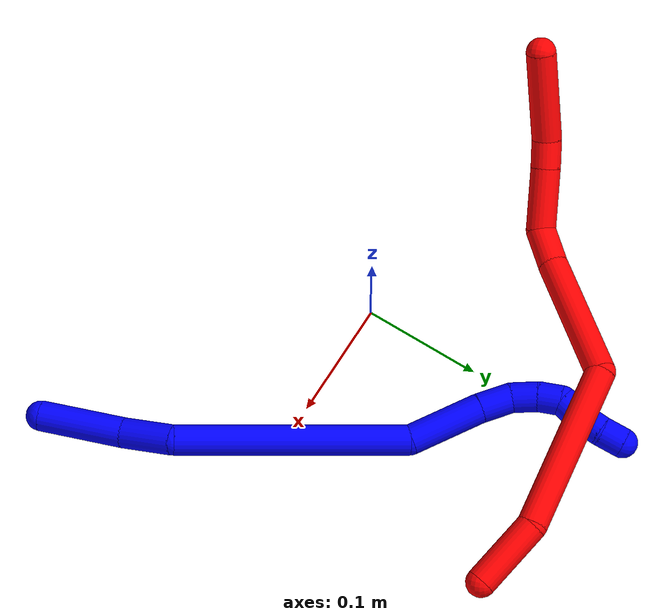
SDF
<sdf version="1.7">
 <world name="default">
  <plugin name="TubeGeneratorPlugin" filename="libtube_generator_plugin.so"/>
  <model name="photoneo_s_sensor">
   <static>1</static>
   <pose>0 0 2 1.57079 1.57079 3.14159</pose>
   <link name="link">
    <inertial><mass>0.1</mass></inertial>
    <sensor name="sensor" type="depth">
     <update_rate>30</update_rate>
     <camera>
      <horizontal_fov>1.22</horizontal_fov>
      <image><width>1920</width><height>1200</height><format>B8G8R8</format></image>
      <clip><near>0.1</near><far>4</far></clip>
      <depth_camera><output>points</output></depth_camera>
     </camera>
     <plugin name="camera_plugin" filename="libgazebo_ros_depth_camera.so">
      <baseline>0.2</baseline>
      <alwaysOn>1</alwaysOn>
      <updateRate>0.0</updateRate>
      <cameraName>camera_ir</cameraName>
      <imageTopicName>/camera/color/image_raw</imageTopicName>
      <cameraInfoTopicName>/camera/color/camera_info</cameraInfoTopicName>
      <depthImageTopicName>/camera/depth/image_raw</depthImageTopicName>
      <depthImageCameraInfoTopicName>/camera/depth/camera_info</depthImageCameraInfoTopicName>
      <pointCloudTopicName>/camera/depth/points</pointCloudTopicName>
      <frameName>fr_optical</frameName>
      <pointCloudCutoff>0.1</pointCloudCutoff>
      <pointCloudCutoffMax>2.0</pointCloudCutoffMax>
      <distortionK1>0</distortionK1>
      <distortionK2>0</distortionK2>
      <distortionK3>0</distortionK3>
      <distortionT1>0</distortionT1>
      <distortionT2>0</distortionT2>
      <CxPrime>0</CxPrime>
      <Cx>0</Cx>
      <Cy>0</Cy>
      <focalLength>0</focalLength>
      <hackBaseline>0</hackBaseline>
     </plugin>
    </sensor>
   </link>
  </model>
  <gravity>0 0 -9.8</gravity>
  <magnetic_field>6e-06 2.3e-05 -4.2e-05</magnetic_field>
  <atmosphere type="adiabatic"/>
  <physics name="default_physics" default="0" type="ode">
   <max_step_size>0.003</max_step_size>
   <real_time_factor>1</real_time_factor>
   <real_time_update_rate>1000</real_time_update_rate>
   <max_contacts>10000</max_contacts>
   <ode>
    <solver>
     <type>quick</type>
     <iters>100</iters>
     <sor>1.3</sor>
     <use_dynamic_moi_rescaling>0</use_dynamic_moi_rescaling>
    </solver>
    <constraints>
     <contact_max_correcting_vel>0</contact_max_correcting_vel>
     <contact_surface_layer>0.001</contact_surface_layer>
     <cfm>0</cfm>
     <erp>0.2</erp>
    </constraints>
   </ode>
  </physics>
  <scene><ambient>0.4 0.4 0.4 1</ambient><background>0.7 0.7 0.7 1</background><shadows>0</shadows></scene>
  <audio><device>default</device></audio>
  <spherical_coordinates>
   <surface_model>EARTH_WGS84</surface_model>
   <latitude_deg>0</latitude_deg>
   <longitude_deg>0</longitude_deg>
   <elevation>0</elevation>
   <heading_deg>0</heading_deg>
  </spherical_coordinates>
  <model name="bin">
   <static>1</static>
   <link name="bottom">
    <collision name="collision-bottom">
     <pose>0 0 -0.01 0 -0 0</pose>
     <geometry><box><size>0.8 0.6 0.02</size></box></geometry>
     <surface>
      <friction><ode><mu>100</mu><mu2>100</mu2></ode></friction>
      <contact><collide_bitmask>65535</collide_bitmask></contact>
     </surface>
    </collision>
   </link>
   <link name="west_wall">
    <collision name="collision-west_wall">
     <pose>-0.41 0 0.1 0 -0 0</pose>
     <geometry><box><size>0.02 0.6 0.2</size></box></geometry>
     <surface>
      <friction><ode><mu>100</mu><mu2>100</mu2></ode></friction>
      <contact><collide_bitmask>65535</collide_bitmask></contact>
     </surface>
    </collision>
   </link>
   <link name="east_wall">
    <collision name="collision-east_wall">
     <pose>0.41 0 0.1 0 -0 0</pose>
     <geometry><box><size>0.02 0.6 0.2</size></box></geometry>
     <surface>
      <friction><ode><mu>100</mu><mu2>100</mu2></ode></friction>
      <contact><collide_bitmask>65535</collide_bitmask></contact>
     </surface>
    </collision>
   </link>
   <link name="south_wall">
    <collision name="collision-south_wall">
     <pose>0 -0.31 0.1 0 -0 0</pose>
     <geometry><box><size>0.8 0.02 0.2</size></box></geometry>
     <surface>
      <friction><ode><mu>100</mu><mu2>100</mu2></ode></friction>
      <contact><collide_bitmask>65535</collide_bitmask></contact>
     </surface>
    </collision>
   </link>
   <link name="north_wall">
    <collision name="collision-north_wall">
     <pose>0 0.31 0.1 0 -0 0</pose>
     <geometry><box><size>0.8 0.02 0.2</size></box></geometry>
     <surface>
      <friction><ode><mu>100</mu><mu2>100</mu2></ode></friction>
      <contact><collide_bitmask>65535</collide_bitmask></contact>
     </surface>
    </collision>
   </link>
  </model>
  <model name="1">
   <static>0</static>
   <link name="1">
    <collision name="collision-cylinder-e_1_1_4">
     <pose>-0.01537 0.027193 -0.0165 -2.11617 -0.450137 0.77256</pose>
     <geometry><cylinder><radius>0.0125</radius><length>0.070653</length></cylinder></geometry>
     <surface>
      <friction><ode><mu>1.16</mu><mu2>1.16</mu2><slip1>0</slip1><slip2>0</slip2></ode></friction>
      <contact><ode><kp>1e+06</kp><kd>1</kd><max_vel>0</max_vel><min_depth>0.001</min_depth></ode></contact>
     </surface>
    </collision>
    <visual name="visual-cylinder-e_1_1_4">
     <pose>-0.01537 0.027193 -0.0165 -2.11617 -0.450137 0.77256</pose>
     <geometry><cylinder><radius>0.0125</radius><length>0.070653</length></cylinder></geometry>
     <material><ambient>0 0 1 1</ambient></material>
    </visual>
    <collision name="collision-cylinder-e_2_4_5">
     <pose>-0.042752 0.07113 -0.04054 -1.99392 -0.579273 0.863999</pose>
     <geometry><cylinder><radius>0.0125</radius><length>0.043886</length></cylinder></geometry>
     <surface>
      <friction><ode><mu>1.16</mu><mu2>1.16</mu2><slip1>0</slip1><slip2>0</slip2></ode></friction>
      <contact><ode><kp>1e+06</kp><kd>1</kd><max_vel>0</max_vel><min_depth>0.001</min_depth></ode></contact>
     </surface>
    </collision>
    <visual name="visual-cylinder-e_2_4_5">
     <pose>-0.042752 0.07113 -0.04054 -1.99392 -0.579273 0.863999</pose>
     <geometry><cylinder><radius>0.0125</radius><length>0.043886</length></cylinder></geometry>
     <material><ambient>0 0 1 1</ambient></material>
    </visual>
    <collision name="collision-cylinder-e_3_5_6">
     <pose>-0.0962 0.140691 -0.116771 -2.4861 -0.446062 1.17654</pose>
     <geometry><cylinder><radius>0.0125</radius><length>0.192094</length></cylinder></geometry>
     <surface>
      <friction><ode><mu>1.16</mu><mu2>1.16</mu2><slip1>0</slip1><slip2>0</slip2></ode></friction>
      <contact><ode><kp>1e+06</kp><kd>1</kd><max_vel>0</max_vel><min_depth>0.001</min_depth></ode></contact>
     </surface>
    </collision>
    <visual name="visual-cylinder-e_3_5_6">
     <pose>-0.0962 0.140691 -0.116771 -2.4861 -0.446062 1.17654</pose>
     <geometry><cylinder><radius>0.0125</radius><length>0.192094</length></cylinder></geometry>
     <material><ambient>0 0 1 1</ambient></material>
    </visual>
    <collision name="collision-cylinder-e_4_6_7">
     <pose>-0.157516 0.199117 -0.20949 -2.91226 -0.678199 2.51037</pose>
     <geometry><cylinder><radius>0.0125</radius><length>0.063373</length></cylinder></geometry>
     <surface>
      <friction><ode><mu>1.16</mu><mu2>1.16</mu2><slip1>0</slip1><slip2>0</slip2></ode></friction>
      <contact><ode><kp>1e+06</kp><kd>1</kd><max_vel>0</max_vel><min_depth>0.001</min_depth></ode></contact>
     </surface>
    </collision>
    <visual name="visual-cylinder-e_4_6_7">
     <pose>-0.157516 0.199117 -0.20949 -2.91226 -0.678199 2.51037</pose>
     <geometry><cylinder><radius>0.0125</radius><length>0.063373</length></cylinder></geometry>
     <material><ambient>0 0 1 1</ambient></material>
    </visual>
    <collision name="collision-cylinder-e_5_7_8">
     <pose>-0.185814 0.208681 -0.243813 -2.77475 -0.651986 2.13784</pose>
     <geometry><cylinder><radius>0.0125</radius><length>0.027747</length></cylinder></geometry>
     <surface>
      <friction><ode><mu>1.16</mu><mu2>1.16</mu2><slip1>0</slip1><slip2>0</slip2></ode></friction>
      <contact><ode><kp>1e+06</kp><kd>1</kd><max_vel>0</max_vel><min_depth>0.001</min_depth></ode></contact>
     </surface>
    </collision>
    <visual name="visual-cylinder-e_5_7_8">
     <pose>-0.185814 0.208681 -0.243813 -2.77475 -0.651986 2.13784</pose>
     <geometry><cylinder><radius>0.0125</radius><length>0.027747</length></cylinder></geometry>
     <material><ambient>0 0 1 1</ambient></material>
    </visual>
    <collision name="collision-cylinder-e_6_8_9">
     <pose>-0.200531 0.219174 -0.26048 -2.34342 -0.60391 1.27233</pose>
     <geometry><cylinder><radius>0.0125</radius><length>0.022184</length></cylinder></geometry>
     <surface>
      <friction><ode><mu>1.16</mu><mu2>1.16</mu2><slip1>0</slip1><slip2>0</slip2></ode></friction>
      <contact><ode><kp>1e+06</kp><kd>1</kd><max_vel>0</max_vel><min_depth>0.001</min_depth></ode></contact>
     </surface>
    </collision>
    <visual name="visual-cylinder-e_6_8_9">
     <pose>-0.200531 0.219174 -0.26048 -2.34342 -0.60391 1.27233</pose>
     <geometry><cylinder><radius>0.0125</radius><length>0.022184</length></cylinder></geometry>
     <material><ambient>0 0 1 1</ambient></material>
    </visual>
    <collision name="collision-cylinder-e_7_9_10">
     <pose>-0.211469 0.233304 -0.271429 -2.11325 -0.482229 0.821182</pose>
     <geometry><cylinder><radius>0.0125</radius><length>0.020011</length></cylinder></geometry>
     <surface>
      <friction><ode><mu>1.16</mu><mu2>1.16</mu2><slip1>0</slip1><slip2>0</slip2></ode></friction>
      <contact><ode><kp>1e+06</kp><kd>1</kd><max_vel>0</max_vel><min_depth>0.001</min_depth></ode></contact>
     </surface>
    </collision>
    <visual name="visual-cylinder-e_7_9_10">
     <pose>-0.211469 0.233304 -0.271429 -2.11325 -0.482229 0.821182</pose>
     <geometry><cylinder><radius>0.0125</radius><length>0.020011</length></cylinder></geometry>
     <material><ambient>0 0 1 1</ambient></material>
    </visual>
    <collision name="collision-cylinder-e_8_10_11">
     <pose>-0.216057 0.25064 -0.278304 -1.8025 0.005222 -0.006597</pose>
     <geometry><cylinder><radius>0.0125</radius><length>0.020025</length></cylinder></geometry>
     <surface>
      <friction><ode><mu>1.16</mu><mu2>1.16</mu2><slip1>0</slip1><slip2>0</slip2></ode></friction>
      <contact><ode><kp>1e+06</kp><kd>1</kd><max_vel>0</max_vel><min_depth>0.001</min_depth></ode></contact>
     </surface>
    </collision>
    <visual name="visual-cylinder-e_8_10_11">
     <pose>-0.216057 0.25064 -0.278304 -1.8025 0.005222 -0.006597</pose>
     <geometry><cylinder><radius>0.0125</radius><length>0.020025</length></cylinder></geometry>
     <material><ambient>0 0 1 1</ambient></material>
    </visual>
    <collision name="collision-cylinder-e_9_11_12">
     <pose>-0.217005 0.269741 -0.284017 -1.9207 -0.100078 0.14293</pose>
     <geometry><cylinder><radius>0.0125</radius><length>0.020019</length></cylinder></geometry>
     <surface>
      <friction><ode><mu>1.16</mu><mu2>1.16</mu2><slip1>0</slip1><slip2>0</slip2></ode></friction>
      <contact><ode><kp>1e+06</kp><kd>1</kd><max_vel>0</max_vel><min_depth>0.001</min_depth></ode></contact>
     </surface>
    </collision>
    <visual name="visual-cylinder-e_9_11_12">
     <pose>-0.217005 0.269741 -0.284017 -1.9207 -0.100078 0.14293</pose>
     <geometry><cylinder><radius>0.0125</radius><length>0.020019</length></cylinder></geometry>
     <material><ambient>0 0 1 1</ambient></material>
    </visual>
    <collision name="collision-cylinder-e_10_12_2">
     <pose>-0.218972 0.287663 -0.292509 -2.10589 -0.096804 0.169642</pose>
     <geometry><cylinder><radius>0.0125</radius><length>0.020009</length></cylinder></geometry>
     <surface>
      <friction><ode><mu>1.16</mu><mu2>1.16</mu2><slip1>0</slip1><slip2>0</slip2></ode></friction>
      <contact><ode><kp>1e+06</kp><kd>1</kd><max_vel>0</max_vel><min_depth>0.001</min_depth></ode></contact>
     </surface>
    </collision>
    <visual name="visual-cylinder-e_10_12_2">
     <pose>-0.218972 0.287663 -0.292509 -2.10589 -0.096804 0.169642</pose>
     <geometry><cylinder><radius>0.0125</radius><length>0.020009</length></cylinder></geometry>
     <material><ambient>0 0 1 1</ambient></material>
    </visual>
    <collision name="collision-sphere-2">
     <pose>-0.219939 0.296229 -0.297587 0 -0 0</pose>
     <geometry><sphere><radius>0.0125</radius></sphere></geometry>
     <surface>
      <friction><ode><mu>1.16</mu><mu2>1.16</mu2><slip1>0</slip1><slip2>0</slip2></ode></friction>
      <contact><ode><kp>1e+06</kp><kd>1</kd><max_vel>0</max_vel><min_depth>0.001</min_depth></ode></contact>
     </surface>
    </collision>
    <visual name="visual-sphere-2">
     <pose>-0.219939 0.296229 -0.297587 0 -0 0</pose>
     <geometry><sphere><radius>0.0125</radius></sphere></geometry>
     <material><ambient>0 0 1 1</ambient></material>
    </visual>
    <collision name="collision-sphere-12">
     <pose>-0.218005 0.279097 -0.287432 0 -0 0</pose>
     <geometry><sphere><radius>0.0125</radius></sphere></geometry>
     <surface>
      <friction><ode><mu>1.16</mu><mu2>1.16</mu2><slip1>0</slip1><slip2>0</slip2></ode></friction>
      <contact><ode><kp>1e+06</kp><kd>1</kd><max_vel>0</max_vel><min_depth>0.001</min_depth></ode></contact>
     </surface>
    </collision>
    <visual name="visual-sphere-12">
     <pose>-0.218005 0.279097 -0.287432 0 -0 0</pose>
     <geometry><sphere><radius>0.0125</radius></sphere></geometry>
     <material><ambient>0 0 1 1</ambient></material>
    </visual>
    <collision name="collision-sphere-11">
     <pose>-0.216005 0.260385 -0.280603 0 -0 0</pose>
     <geometry><sphere><radius>0.0125</radius></sphere></geometry>
     <surface>
      <friction><ode><mu>1.16</mu><mu2>1.16</mu2><slip1>0</slip1><slip2>0</slip2></ode></friction>
      <contact><ode><kp>1e+06</kp><kd>1</kd><max_vel>0</max_vel><min_depth>0.001</min_depth></ode></contact>
     </surface>
    </collision>
    <visual name="visual-sphere-11">
     <pose>-0.216005 0.260385 -0.280603 0 -0 0</pose>
     <geometry><sphere><radius>0.0125</radius></sphere></geometry>
     <material><ambient>0 0 1 1</ambient></material>
    </visual>
    <collision name="collision-sphere-10">
     <pose>-0.216109 0.240896 -0.276005 0 -0 0</pose>
     <geometry><sphere><radius>0.0125</radius></sphere></geometry>
     <surface>
      <friction><ode><mu>1.16</mu><mu2>1.16</mu2><slip1>0</slip1><slip2>0</slip2></ode></friction>
      <contact><ode><kp>1e+06</kp><kd>1</kd><max_vel>0</max_vel><min_depth>0.001</min_depth></ode></contact>
     </surface>
    </collision>
    <visual name="visual-sphere-10">
     <pose>-0.216109 0.240896 -0.276005 0 -0 0</pose>
     <geometry><sphere><radius>0.0125</radius></sphere></geometry>
     <material><ambient>0 0 1 1</ambient></material>
    </visual>
    <collision name="collision-sphere-9">
     <pose>-0.206829 0.225712 -0.266852 0 -0 0</pose>
     <geometry><sphere><radius>0.0125</radius></sphere></geometry>
     <surface>
      <friction><ode><mu>1.16</mu><mu2>1.16</mu2><slip1>0</slip1><slip2>0</slip2></ode></friction>
      <contact><ode><kp>1e+06</kp><kd>1</kd><max_vel>0</max_vel><min_depth>0.001</min_depth></ode></contact>
     </surface>
    </collision>
    <visual name="visual-sphere-9">
     <pose>-0.206829 0.225712 -0.266852 0 -0 0</pose>
     <geometry><sphere><radius>0.0125</radius></sphere></geometry>
     <material><ambient>0 0 1 1</ambient></material>
    </visual>
    <collision name="collision-sphere-4">
     <pose>-0.03074 0.054387 -0.033 0 -0 0</pose>
     <geometry><sphere><radius>0.0125</radius></sphere></geometry>
     <surface>
      <friction><ode><mu>1.16</mu><mu2>1.16</mu2><slip1>0</slip1><slip2>0</slip2></ode></friction>
      <contact><ode><kp>1e+06</kp><kd>1</kd><max_vel>0</max_vel><min_depth>0.001</min_depth></ode></contact>
     </surface>
    </collision>
    <visual name="visual-sphere-4">
     <pose>-0.03074 0.054387 -0.033 0 -0 0</pose>
     <geometry><sphere><radius>0.0125</radius></sphere></geometry>
     <material><ambient>0 0 1 1</ambient></material>
    </visual>
    <collision name="collision-sphere-1">
     <geometry><sphere><radius>0.0125</radius></sphere></geometry>
     <surface>
      <friction><ode><mu>1.16</mu><mu2>1.16</mu2><slip1>0</slip1><slip2>0</slip2></ode></friction>
      <contact><ode><kp>1e+06</kp><kd>1</kd><max_vel>0</max_vel><min_depth>0.001</min_depth></ode></contact>
     </surface>
    </collision>
    <visual name="visual-sphere-1">
     <geometry><sphere><radius>0.0125</radius></sphere></geometry>
     <material><ambient>0 0 1 1</ambient></material>
    </visual>
    <collision name="collision-sphere-8">
     <pose>-0.194232 0.212636 -0.254107 0 -0 0</pose>
     <geometry><sphere><radius>0.0125</radius></sphere></geometry>
     <surface>
      <friction><ode><mu>1.16</mu><mu2>1.16</mu2><slip1>0</slip1><slip2>0</slip2></ode></friction>
      <contact><ode><kp>1e+06</kp><kd>1</kd><max_vel>0</max_vel><min_depth>0.001</min_depth></ode></contact>
     </surface>
    </collision>
    <visual name="visual-sphere-8">
     <pose>-0.194232 0.212636 -0.254107 0 -0 0</pose>
     <geometry><sphere><radius>0.0125</radius></sphere></geometry>
     <material><ambient>0 0 1 1</ambient></material>
    </visual>
    <collision name="collision-sphere-5">
     <pose>-0.054764 0.087874 -0.04808 0 -0 0</pose>
     <geometry><sphere><radius>0.0125</radius></sphere></geometry>
     <surface>
      <friction><ode><mu>1.16</mu><mu2>1.16</mu2><slip1>0</slip1><slip2>0</slip2></ode></friction>
      <contact><ode><kp>1e+06</kp><kd>1</kd><max_vel>0</max_vel><min_depth>0.001</min_depth></ode></contact>
     </surface>
    </collision>
    <visual name="visual-sphere-5">
     <pose>-0.054764 0.087874 -0.04808 0 -0 0</pose>
     <geometry><sphere><radius>0.0125</radius></sphere></geometry>
     <material><ambient>0 0 1 1</ambient></material>
    </visual>
    <collision name="collision-sphere-6">
     <pose>-0.137636 0.193507 -0.185462 0 -0 0</pose>
     <geometry><sphere><radius>0.0125</radius></sphere></geometry>
     <surface>
      <friction><ode><mu>1.16</mu><mu2>1.16</mu2><slip1>0</slip1><slip2>0</slip2></ode></friction>
      <contact><ode><kp>1e+06</kp><kd>1</kd><max_vel>0</max_vel><min_depth>0.001</min_depth></ode></contact>
     </surface>
    </collision>
    <visual name="visual-sphere-6">
     <pose>-0.137636 0.193507 -0.185462 0 -0 0</pose>
     <geometry><sphere><radius>0.0125</radius></sphere></geometry>
     <material><ambient>0 0 1 1</ambient></material>
    </visual>
    <collision name="collision-sphere-7">
     <pose>-0.177396 0.204726 -0.233519 0 -0 0</pose>
     <geometry><sphere><radius>0.0125</radius></sphere></geometry>
     <surface>
      <friction><ode><mu>1.16</mu><mu2>1.16</mu2><slip1>0</slip1><slip2>0</slip2></ode></friction>
      <contact><ode><kp>1e+06</kp><kd>1</kd><max_vel>0</max_vel><min_depth>0.001</min_depth></ode></contact>
     </surface>
    </collision>
    <visual name="visual-sphere-7">
     <pose>-0.177396 0.204726 -0.233519 0 -0 0</pose>
     <geometry><sphere><radius>0.0125</radius></sphere></geometry>
     <material><ambient>0 0 1 1</ambient></material>
    </visual>
    <inertial>
     <pose>-0.116624 0.152366 -0.147477 0 -0 0</pose>
     <mass>0.5</mass>
     <inertia>
      <ixx>0.000745</ixx>
      <ixy>0</ixy>
      <ixz>0</ixz>
      <iyy>0.000545</iyy>
      <iyz>0</iyz>
      <izz>-9.9e-05</izz>
     </inertia>
    </inertial>
   </link>
   <pose>0.223215 -0.178351 0.012367 0.150631 0.848472 -0.270854</pose>
  </model>
  <model name="2">
   <static>0</static>
   <link name="2">
    <collision name="collision-cylinder-e_1_1_4">
     <pose>-0.026508 -0.007642 0.012353 0.554021 -1.06951 -0.333686</pose>
     <geometry><cylinder><radius>0.0125</radius><length>0.060455</length></cylinder></geometry>
     <surface>
      <friction><ode><mu>1.16</mu><mu2>1.16</mu2><slip1>0</slip1><slip2>0</slip2></ode></friction>
      <contact><ode><kp>1e+06</kp><kd>1</kd><max_vel>0</max_vel><min_depth>0.001</min_depth></ode></contact>
     </surface>
    </collision>
    <visual name="visual-cylinder-e_1_1_4">
     <pose>-0.026508 -0.007642 0.012353 0.554021 -1.06951 -0.333686</pose>
     <geometry><cylinder><radius>0.0125</radius><length>0.060455</length></cylinder></geometry>
     <material><ambient>1 0 0 1</ambient></material>
    </visual>
    <collision name="collision-cylinder-e_2_4_5">
     <pose>-0.122559 -0.030998 0.029513 1.27391 -1.33876 -1.0592</pose>
     <geometry><cylinder><radius>0.0125</radius><length>0.142914</length></cylinder></geometry>
     <surface>
      <friction><ode><mu>1.16</mu><mu2>1.16</mu2><slip1>0</slip1><slip2>0</slip2></ode></friction>
      <contact><ode><kp>1e+06</kp><kd>1</kd><max_vel>0</max_vel><min_depth>0.001</min_depth></ode></contact>
     </surface>
    </collision>
    <visual name="visual-cylinder-e_2_4_5">
     <pose>-0.122559 -0.030998 0.029513 1.27391 -1.33876 -1.0592</pose>
     <geometry><cylinder><radius>0.0125</radius><length>0.142914</length></cylinder></geometry>
     <material><ambient>1 0 0 1</ambient></material>
    </visual>
    <collision name="collision-cylinder-e_3_5_6">
     <pose>-0.233309 -0.056633 -0.001178 2.86904 -0.841053 -2.54655</pose>
     <geometry><cylinder><radius>0.0125</radius><length>0.110574</length></cylinder></geometry>
     <surface>
      <friction><ode><mu>1.16</mu><mu2>1.16</mu2><slip1>0</slip1><slip2>0</slip2></ode></friction>
      <contact><ode><kp>1e+06</kp><kd>1</kd><max_vel>0</max_vel><min_depth>0.001</min_depth></ode></contact>
     </surface>
    </collision>
    <visual name="visual-cylinder-e_3_5_6">
     <pose>-0.233309 -0.056633 -0.001178 2.86904 -0.841053 -2.54655</pose>
     <geometry><cylinder><radius>0.0125</radius><length>0.110574</length></cylinder></geometry>
     <material><ambient>1 0 0 1</ambient></material>
    </visual>
    <collision name="collision-cylinder-e_4_6_7">
     <pose>-0.286557 -0.07253 -0.046109 2.57703 -0.823049 -1.96857</pose>
     <geometry><cylinder><radius>0.0125</radius><length>0.032842</length></cylinder></geometry>
     <surface>
      <friction><ode><mu>1.16</mu><mu2>1.16</mu2><slip1>0</slip1><slip2>0</slip2></ode></friction>
      <contact><ode><kp>1e+06</kp><kd>1</kd><max_vel>0</max_vel><min_depth>0.001</min_depth></ode></contact>
     </surface>
    </collision>
    <visual name="visual-cylinder-e_4_6_7">
     <pose>-0.286557 -0.07253 -0.046109 2.57703 -0.823049 -1.96857</pose>
     <geometry><cylinder><radius>0.0125</radius><length>0.032842</length></cylinder></geometry>
     <material><ambient>1 0 0 1</ambient></material>
    </visual>
    <collision name="collision-cylinder-e_5_7_8">
     <pose>-0.316225 -0.097774 -0.057556 1.67489 -0.738218 -0.811112</pose>
     <geometry><cylinder><radius>0.0125</radius><length>0.052387</length></cylinder></geometry>
     <surface>
      <friction><ode><mu>1.16</mu><mu2>1.16</mu2><slip1>0</slip1><slip2>0</slip2></ode></friction>
      <contact><ode><kp>1e+06</kp><kd>1</kd><max_vel>0</max_vel><min_depth>0.001</min_depth></ode></contact>
     </surface>
    </collision>
    <visual name="visual-cylinder-e_5_7_8">
     <pose>-0.316225 -0.097774 -0.057556 1.67489 -0.738218 -0.811112</pose>
     <geometry><cylinder><radius>0.0125</radius><length>0.052387</length></cylinder></geometry>
     <material><ambient>1 0 0 1</ambient></material>
    </visual>
    <collision name="collision-cylinder-e_6_8_9">
     <pose>-0.341563 -0.126189 -0.06078 1.70243 -0.696207 -0.78519</pose>
     <geometry><cylinder><radius>0.0125</radius><length>0.024047</length></cylinder></geometry>
     <surface>
      <friction><ode><mu>1.16</mu><mu2>1.16</mu2><slip1>0</slip1><slip2>0</slip2></ode></friction>
      <contact><ode><kp>1e+06</kp><kd>1</kd><max_vel>0</max_vel><min_depth>0.001</min_depth></ode></contact>
     </surface>
    </collision>
    <visual name="visual-cylinder-e_6_8_9">
     <pose>-0.341563 -0.126189 -0.06078 1.70243 -0.696207 -0.78519</pose>
     <geometry><cylinder><radius>0.0125</radius><length>0.024047</length></cylinder></geometry>
     <material><ambient>1 0 0 1</ambient></material>
    </visual>
    <collision name="collision-cylinder-e_7_9_2">
     <pose>-0.364199 -0.170546 -0.06534 1.66562 -0.399294 -0.43787</pose>
     <geometry><cylinder><radius>0.0125</radius><length>0.076781</length></cylinder></geometry>
     <surface>
      <friction><ode><mu>1.16</mu><mu2>1.16</mu2><slip1>0</slip1><slip2>0</slip2></ode></friction>
      <contact><ode><kp>1e+06</kp><kd>1</kd><max_vel>0</max_vel><min_depth>0.001</min_depth></ode></contact>
     </surface>
    </collision>
    <visual name="visual-cylinder-e_7_9_2">
     <pose>-0.364199 -0.170546 -0.06534 1.66562 -0.399294 -0.43787</pose>
     <geometry><cylinder><radius>0.0125</radius><length>0.076781</length></cylinder></geometry>
     <material><ambient>1 0 0 1</ambient></material>
    </visual>
    <collision name="collision-sphere-2">
     <pose>-0.379124 -0.205758 -0.068689 0 -0 0</pose>
     <geometry><sphere><radius>0.0125</radius></sphere></geometry>
     <surface>
      <friction><ode><mu>1.16</mu><mu2>1.16</mu2><slip1>0</slip1><slip2>0</slip2></ode></friction>
      <contact><ode><kp>1e+06</kp><kd>1</kd><max_vel>0</max_vel><min_depth>0.001</min_depth></ode></contact>
     </surface>
    </collision>
    <visual name="visual-sphere-2">
     <pose>-0.379124 -0.205758 -0.068689 0 -0 0</pose>
     <geometry><sphere><radius>0.0125</radius></sphere></geometry>
     <material><ambient>1 0 0 1</ambient></material>
    </visual>
    <collision name="collision-sphere-9">
     <pose>-0.349274 -0.135334 -0.061991 0 -0 0</pose>
     <geometry><sphere><radius>0.0125</radius></sphere></geometry>
     <surface>
      <friction><ode><mu>1.16</mu><mu2>1.16</mu2><slip1>0</slip1><slip2>0</slip2></ode></friction>
      <contact><ode><kp>1e+06</kp><kd>1</kd><max_vel>0</max_vel><min_depth>0.001</min_depth></ode></contact>
     </surface>
    </collision>
    <visual name="visual-sphere-9">
     <pose>-0.349274 -0.135334 -0.061991 0 -0 0</pose>
     <geometry><sphere><radius>0.0125</radius></sphere></geometry>
     <material><ambient>1 0 0 1</ambient></material>
    </visual>
    <collision name="collision-sphere-4">
     <pose>-0.053017 -0.015285 0.024706 0 -0 0</pose>
     <geometry><sphere><radius>0.0125</radius></sphere></geometry>
     <surface>
      <friction><ode><mu>1.16</mu><mu2>1.16</mu2><slip1>0</slip1><slip2>0</slip2></ode></friction>
      <contact><ode><kp>1e+06</kp><kd>1</kd><max_vel>0</max_vel><min_depth>0.001</min_depth></ode></contact>
     </surface>
    </collision>
    <visual name="visual-sphere-4">
     <pose>-0.053017 -0.015285 0.024706 0 -0 0</pose>
     <geometry><sphere><radius>0.0125</radius></sphere></geometry>
     <material><ambient>1 0 0 1</ambient></material>
    </visual>
    <collision name="collision-sphere-1">
     <geometry><sphere><radius>0.0125</radius></sphere></geometry>
     <surface>
      <friction><ode><mu>1.16</mu><mu2>1.16</mu2><slip1>0</slip1><slip2>0</slip2></ode></friction>
      <contact><ode><kp>1e+06</kp><kd>1</kd><max_vel>0</max_vel><min_depth>0.001</min_depth></ode></contact>
     </surface>
    </collision>
    <visual name="visual-sphere-1">
     <geometry><sphere><radius>0.0125</radius></sphere></geometry>
     <material><ambient>1 0 0 1</ambient></material>
    </visual>
    <collision name="collision-sphere-8">
     <pose>-0.333852 -0.117044 -0.059569 0 -0 0</pose>
     <geometry><sphere><radius>0.0125</radius></sphere></geometry>
     <surface>
      <friction><ode><mu>1.16</mu><mu2>1.16</mu2><slip1>0</slip1><slip2>0</slip2></ode></friction>
      <contact><ode><kp>1e+06</kp><kd>1</kd><max_vel>0</max_vel><min_depth>0.001</min_depth></ode></contact>
     </surface>
    </collision>
    <visual name="visual-sphere-8">
     <pose>-0.333852 -0.117044 -0.059569 0 -0 0</pose>
     <geometry><sphere><radius>0.0125</radius></sphere></geometry>
     <material><ambient>1 0 0 1</ambient></material>
    </visual>
    <collision name="collision-sphere-5">
     <pose>-0.192101 -0.046712 0.034321 0 -0 0</pose>
     <geometry><sphere><radius>0.0125</radius></sphere></geometry>
     <surface>
      <friction><ode><mu>1.16</mu><mu2>1.16</mu2><slip1>0</slip1><slip2>0</slip2></ode></friction>
      <contact><ode><kp>1e+06</kp><kd>1</kd><max_vel>0</max_vel><min_depth>0.001</min_depth></ode></contact>
     </surface>
    </collision>
    <visual name="visual-sphere-5">
     <pose>-0.192101 -0.046712 0.034321 0 -0 0</pose>
     <geometry><sphere><radius>0.0125</radius></sphere></geometry>
     <material><ambient>1 0 0 1</ambient></material>
    </visual>
    <collision name="collision-sphere-6">
     <pose>-0.274516 -0.066555 -0.036676 0 -0 0</pose>
     <geometry><sphere><radius>0.0125</radius></sphere></geometry>
     <surface>
      <friction><ode><mu>1.16</mu><mu2>1.16</mu2><slip1>0</slip1><slip2>0</slip2></ode></friction>
      <contact><ode><kp>1e+06</kp><kd>1</kd><max_vel>0</max_vel><min_depth>0.001</min_depth></ode></contact>
     </surface>
    </collision>
    <visual name="visual-sphere-6">
     <pose>-0.274516 -0.066555 -0.036676 0 -0 0</pose>
     <geometry><sphere><radius>0.0125</radius></sphere></geometry>
     <material><ambient>1 0 0 1</ambient></material>
    </visual>
    <collision name="collision-sphere-7">
     <pose>-0.298597 -0.078504 -0.055543 0 -0 0</pose>
     <geometry><sphere><radius>0.0125</radius></sphere></geometry>
     <surface>
      <friction><ode><mu>1.16</mu><mu2>1.16</mu2><slip1>0</slip1><slip2>0</slip2></ode></friction>
      <contact><ode><kp>1e+06</kp><kd>1</kd><max_vel>0</max_vel><min_depth>0.001</min_depth></ode></contact>
     </surface>
    </collision>
    <visual name="visual-sphere-7">
     <pose>-0.298597 -0.078504 -0.055543 0 -0 0</pose>
     <geometry><sphere><radius>0.0125</radius></sphere></geometry>
     <material><ambient>1 0 0 1</ambient></material>
    </visual>
    <inertial>
     <pose>-0.21414 -0.069575 -0.012347 0 -0 0</pose>
     <mass>0.5</mass>
     <inertia>
      <ixx>-0.00014</ixx>
      <ixy>0</ixy>
      <ixz>0</ixz>
      <iyy>0.000236</iyy>
      <iyz>0</iyz>
      <izz>0.000504</izz>
     </inertia>
    </inertial>
   </link>
   <pose>0.159913 0.200743 0.032561 -1.26056 -0.237154 0.129161</pose>
  </model>
 </world>
</sdf>
